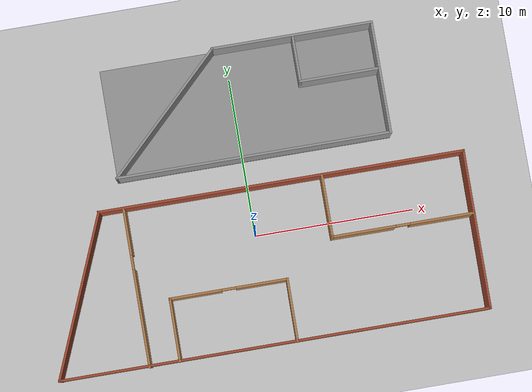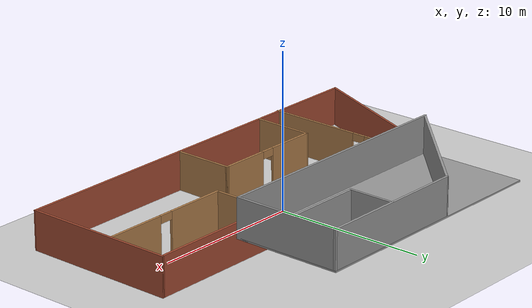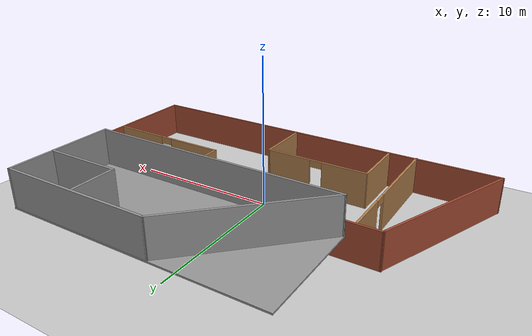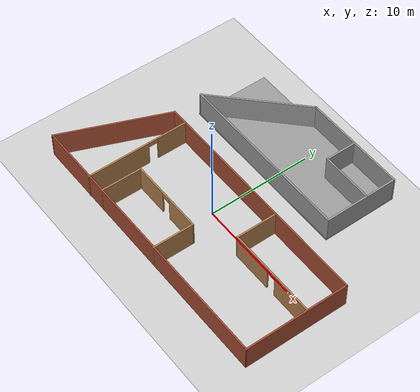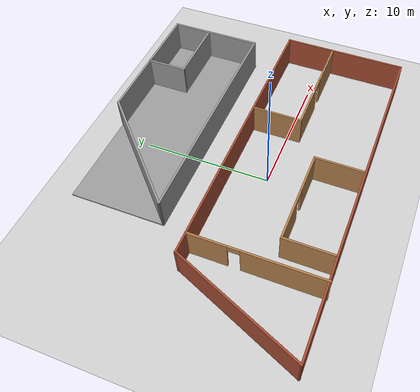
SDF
<sdf version="1.7">
 <world name="default">
  <light name="sun" type="directional">
   <pose>0 0 10 0 -0 0</pose>
   <diffuse>0.8 0.8 0.8 1</diffuse>
   <specular>0.2 0.2 0.2 1</specular>
   <attenuation>
    <range>1000</range>
    <constant>0.9</constant>
    <linear>0.01</linear>
    <quadratic>0.001</quadratic>
   </attenuation>
   <direction>-0.5 0.1 -0.9</direction>
   <spot><inner_angle>0</inner_angle><outer_angle>0</outer_angle><falloff>0</falloff></spot>
  </light>
  <model name="ground_plane">
   <static>1</static>
   <link name="link">
    <collision name="collision">
     <geometry><plane><normal>0 0 1</normal><size>100 100</size></plane></geometry>
     <surface>
      <contact><collide_bitmask>65535</collide_bitmask></contact>
      <friction><ode><mu>100</mu><mu2>50</mu2></ode></friction>
     </surface>
    </collision>
    <visual name="visual">
     <cast_shadows>0</cast_shadows>
     <geometry><plane><normal>0 0 1</normal><size>100 100</size></plane></geometry>
     <material>
      <script><uri>file://media/materials/scripts/gazebo.material</uri><name>Gazebo/Grey</name></script>
     </material>
    </visual>
   </link>
  </model>
  <gravity>0 0 -9.8</gravity>
  <magnetic_field>6e-06 2.3e-05 -4.2e-05</magnetic_field>
  <atmosphere type="adiabatic"/>
  <physics type="ode">
   <max_step_size>0.001</max_step_size>
   <real_time_factor>1</real_time_factor>
   <real_time_update_rate>1000</real_time_update_rate>
  </physics>
  <scene><ambient>0.4 0.4 0.4 1</ambient><background>0.7 0.7 0.7 1</background><shadows>1</shadows></scene>
  <spherical_coordinates>
   <surface_model>EARTH_WGS84</surface_model>
   <latitude_deg>0</latitude_deg>
   <longitude_deg>0</longitude_deg>
   <elevation>0</elevation>
   <heading_deg>0</heading_deg>
  </spherical_coordinates>
  <model name="world_1">
   <pose>0.091985 -2.00856 0 0 -0 0</pose>
   <link name="Floor_0">
    <collision name="Floor_0_Collision">
     <geometry><box><size>17.0311 7.06212 0.1</size></box></geometry>
     <pose>0 0 0.05 0 -0 0</pose>
    </collision>
    <visual name="Floor_0_Visual">
     <pose>0 0 0.05 0 -0 0</pose>
     <geometry><box><size>17.0311 7.06212 0.1</size></box></geometry>
     <material>
      <script><uri>file://media/materials/scripts/gazebo.material</uri><name>Gazebo/Grey</name></script>
      <ambient>1 1 1 1</ambient>
     </material>
     <meta><layer>1</layer></meta>
    </visual>
    <pose>0.597686 10.0048 2.5 0 -0 0</pose>
   </link>
   <link name="Wall_109">
    <collision name="Wall_109_Collision">
     <geometry><box><size>4 0.15 2.5</size></box></geometry>
     <pose>0 0 1.25 0 -0 0</pose>
    </collision>
    <visual name="Wall_109_Visual">
     <pose>0 0 1.25 0 -0 0</pose>
     <geometry><box><size>4 0.15 2.5</size></box></geometry>
     <material>
      <script><uri>file://media/materials/scripts/gazebo.material</uri><name>Gazebo/Wood</name></script>
      <ambient>1 1 1 1</ambient>
     </material>
     <meta><layer>0</layer></meta>
    </visual>
    <pose>4.57966 2.95513 0 0 -0 -1.5708</pose>
   </link>
   <link name="Wall_110">
    <pose>9.00466 1.03013 0 0 -0 0</pose>
    <visual name="Wall_110_Visual_0">
     <pose>-2.46935 0 1.25 0 -0 0</pose>
     <geometry><box><size>4.02107 0.15 2.5</size></box></geometry>
     <material>
      <script><uri>file://media/materials/scripts/gazebo.material</uri><name>Gazebo/Wood</name></script>
      <ambient>1 1 1 1</ambient>
     </material>
     <meta><layer>0</layer></meta>
    </visual>
    <collision name="Wall_110_Collision_0">
     <geometry><box><size>4.02107 0.15 2.5</size></box></geometry>
     <pose>-2.46935 0 1.25 0 -0 0</pose>
    </collision>
    <visual name="Wall_110_Visual_1">
     <pose>2.46053 0 1.25 0 -0 0</pose>
     <geometry><box><size>4.03871 0.15 2.5</size></box></geometry>
     <material>
      <script><uri>file://media/materials/scripts/gazebo.material</uri><name>Gazebo/Wood</name></script>
      <ambient>1 1 1 1</ambient>
     </material>
     <meta><layer>0</layer></meta>
    </visual>
    <collision name="Wall_110_Collision_1">
     <geometry><box><size>4.03871 0.15 2.5</size></box></geometry>
     <pose>2.46053 0 1.25 0 -0 0</pose>
    </collision>
    <visual name="Wall_110_Visual_2">
     <pose>-0.008819 0 2.25 0 -0 0</pose>
     <geometry><box><size>0.9 0.15 0.5</size></box></geometry>
     <material>
      <script><uri>file://media/materials/scripts/gazebo.material</uri><name>Gazebo/Wood</name></script>
      <ambient>1 1 1 1</ambient>
     </material>
     <meta><layer>0</layer></meta>
    </visual>
    <collision name="Wall_110_Collision_2">
     <geometry><box><size>0.9 0.15 0.5</size></box></geometry>
     <pose>-0.008819 0 2.25 0 -0 0</pose>
    </collision>
   </link>
   <link name="Wall_112">
    <collision name="Wall_112_Collision">
     <geometry><box><size>4 0.15 2.5</size></box></geometry>
     <pose>0 0 1.25 0 -0 0</pose>
    </collision>
    <visual name="Wall_112_Visual">
     <pose>0 0 1.25 0 -0 0</pose>
     <geometry><box><size>4 0.15 2.5</size></box></geometry>
     <material>
      <script><uri>file://media/materials/scripts/gazebo.material</uri><name>Gazebo/Wood</name></script>
      <ambient>1 1 1 1</ambient>
     </material>
     <meta><layer>0</layer></meta>
    </visual>
    <pose>-5.94333 -2.99081 0 0 -0 1.56557</pose>
   </link>
   <link name="Wall_113">
    <pose>-2.25827 -1.06581 0 0 -0 0</pose>
    <visual name="Wall_113_Visual_0">
     <pose>-2.09469 0 1.25 0 -0 0</pose>
     <geometry><box><size>3.2704 0.15 2.5</size></box></geometry>
     <material>
      <script><uri>file://media/materials/scripts/gazebo.material</uri><name>Gazebo/Wood</name></script>
      <ambient>1 1 1 1</ambient>
     </material>
     <meta><layer>0</layer></meta>
    </visual>
    <collision name="Wall_113_Collision_0">
     <geometry><box><size>3.2704 0.15 2.5</size></box></geometry>
     <pose>-2.09469 0 1.25 0 -0 0</pose>
    </collision>
    <visual name="Wall_113_Visual_1">
     <pose>2.0852 0 1.25 0 -0 0</pose>
     <geometry><box><size>3.28938 0.15 2.5</size></box></geometry>
     <material>
      <script><uri>file://media/materials/scripts/gazebo.material</uri><name>Gazebo/Wood</name></script>
      <ambient>1 1 1 1</ambient>
     </material>
     <meta><layer>0</layer></meta>
    </visual>
    <collision name="Wall_113_Collision_1">
     <geometry><box><size>3.28938 0.15 2.5</size></box></geometry>
     <pose>2.0852 0 1.25 0 -0 0</pose>
    </collision>
    <visual name="Wall_113_Visual_2">
     <pose>-0.009489 0 2.25 0 -0 0</pose>
     <geometry><box><size>0.9 0.15 0.5</size></box></geometry>
     <material>
      <script><uri>file://media/materials/scripts/gazebo.material</uri><name>Gazebo/Wood</name></script>
      <ambient>1 1 1 1</ambient>
     </material>
     <meta><layer>0</layer></meta>
    </visual>
    <collision name="Wall_113_Collision_2">
     <geometry><box><size>0.9 0.15 0.5</size></box></geometry>
     <pose>-0.009489 0 2.25 0 -0 0</pose>
    </collision>
   </link>
   <link name="Wall_114">
    <collision name="Wall_114_Collision">
     <geometry><box><size>4 0.15 2.5</size></box></geometry>
     <pose>0 0 1.25 0 -0 0</pose>
    </collision>
    <visual name="Wall_114_Visual">
     <pose>0 0 1.25 0 -0 0</pose>
     <geometry><box><size>4 0.15 2.5</size></box></geometry>
     <material>
      <script><uri>file://media/materials/scripts/gazebo.material</uri><name>Gazebo/Wood</name></script>
      <ambient>1 1 1 1</ambient>
     </material>
     <meta><layer>0</layer></meta>
    </visual>
    <pose>1.38656 -2.99081 0 0 -0 -1.57602</pose>
   </link>
   <link name="Wall_54">
    <collision name="Wall_54_Collision">
     <geometry><box><size>7 0.15 2.5</size></box></geometry>
     <pose>0 0 1.25 0 -0 0</pose>
    </collision>
    <visual name="Wall_54_Visual">
     <pose>0 0 1.25 0 -0 0</pose>
     <geometry><box><size>7 0.15 2.5</size></box></geometry>
     <material>
      <script><uri>file://media/materials/scripts/gazebo.material</uri><name>Gazebo/Grey</name></script>
      <ambient>1 1 1 1</ambient>
     </material>
     <meta><layer>1</layer></meta>
    </visual>
    <pose>9.03822 10.0048 2.5 0 -0 1.5708</pose>
   </link>
   <link name="Wall_55">
    <collision name="Wall_55_Collision">
     <geometry><box><size>10 0.15 2.5</size></box></geometry>
     <pose>0 0 1.25 0 -0 0</pose>
    </collision>
    <visual name="Wall_55_Visual">
     <pose>0 0 1.25 0 -0 0</pose>
     <geometry><box><size>10 0.15 2.5</size></box></geometry>
     <material>
      <script><uri>file://media/materials/scripts/gazebo.material</uri><name>Gazebo/Grey</name></script>
      <ambient>1 1 1 1</ambient>
     </material>
     <meta><layer>1</layer></meta>
    </visual>
    <pose>4.11322 13.4298 2.5 0 -0 3.14159</pose>
   </link>
   <link name="Wall_56">
    <collision name="Wall_56_Collision">
     <geometry><box><size>17 0.15 2.5</size></box></geometry>
     <pose>0 0 1.25 0 -0 0</pose>
    </collision>
    <visual name="Wall_56_Visual">
     <pose>0 0 1.25 0 -0 0</pose>
     <geometry><box><size>17 0.15 2.5</size></box></geometry>
     <material>
      <script><uri>file://media/materials/scripts/gazebo.material</uri><name>Gazebo/Grey</name></script>
      <ambient>1 1 1 1</ambient>
     </material>
     <meta><layer>1</layer></meta>
    </visual>
    <pose>0.613216 6.57977 2.5 0 -0 3.14159</pose>
   </link>
   <link name="Wall_57">
    <collision name="Wall_57_Collision">
     <geometry><box><size>9.944 0.15 2.5</size></box></geometry>
     <pose>0 0 1.25 0 -0 0</pose>
    </collision>
    <visual name="Wall_57_Visual">
     <pose>0 0 1.25 0 -0 0</pose>
     <geometry><box><size>9.944 0.15 2.5</size></box></geometry>
     <material>
      <script><uri>file://media/materials/scripts/gazebo.material</uri><name>Gazebo/Grey</name></script>
      <ambient>1 1 1 1</ambient>
     </material>
     <meta><layer>1</layer></meta>
    </visual>
    <pose>-4.31178 10.0048 2.5 0 -0 -2.36702</pose>
   </link>
   <link name="Wall_58">
    <collision name="Wall_58_Collision">
     <geometry><box><size>3 0.15 2.5</size></box></geometry>
     <pose>0 0 1.25 0 -0 0</pose>
    </collision>
    <visual name="Wall_58_Visual">
     <pose>0 0 1.25 0 -0 0</pose>
     <geometry><box><size>3 0.15 2.5</size></box></geometry>
     <material>
      <script><uri>file://media/materials/scripts/gazebo.material</uri><name>Gazebo/Grey</name></script>
      <ambient>1 1 1 1</ambient>
     </material>
     <meta><layer>1</layer></meta>
    </visual>
    <pose>4.15037 11.9803 2.5 0 -0 -1.5708</pose>
   </link>
   <link name="Wall_59">
    <collision name="Wall_59_Collision">
     <geometry><box><size>5 0.15 2.5</size></box></geometry>
     <pose>0 0 1.25 0 -0 0</pose>
    </collision>
    <visual name="Wall_59_Visual">
     <pose>0 0 1.25 0 -0 0</pose>
     <geometry><box><size>5 0.15 2.5</size></box></geometry>
     <material>
      <script><uri>file://media/materials/scripts/gazebo.material</uri><name>Gazebo/Grey</name></script>
      <ambient>1 1 1 1</ambient>
     </material>
     <meta><layer>1</layer></meta>
    </visual>
    <pose>6.57537 10.5553 2.5 0 -0 0</pose>
   </link>
   <link name="Wall_94">
    <collision name="Wall_94_Collision">
     <geometry><box><size>27 0.15 2.5</size></box></geometry>
     <pose>0 0 1.25 0 -0 0</pose>
    </collision>
    <visual name="Wall_94_Visual">
     <pose>0 0 1.25 0 -0 0</pose>
     <geometry><box><size>27 0.15 2.5</size></box></geometry>
     <material>
      <script><uri>file://media/materials/scripts/gazebo.material</uri><name>Gazebo/Bricks</name></script>
      <ambient>1 1 1 1</ambient>
     </material>
     <meta><layer>0</layer></meta>
    </visual>
    <pose>-0.015354 -4.90626 0 0 -0 0</pose>
   </link>
   <link name="Wall_95">
    <collision name="Wall_95_Collision">
     <geometry><box><size>10 0.15 2.5</size></box></geometry>
     <pose>0 0 1.25 0 -0 0</pose>
    </collision>
    <visual name="Wall_95_Visual">
     <pose>0 0 1.25 0 -0 0</pose>
     <geometry><box><size>10 0.15 2.5</size></box></geometry>
     <material>
      <script><uri>file://media/materials/scripts/gazebo.material</uri><name>Gazebo/Bricks</name></script>
      <ambient>1 1 1 1</ambient>
     </material>
     <meta><layer>0</layer></meta>
    </visual>
    <pose>13.4362 0.018744 0 0 -0 1.5654</pose>
   </link>
   <link name="Wall_96">
    <collision name="Wall_96_Collision">
     <geometry><box><size>23 0.15 2.5</size></box></geometry>
     <pose>0 0 1.25 0 -0 0</pose>
    </collision>
    <visual name="Wall_96_Visual">
     <pose>0 0 1.25 0 -0 0</pose>
     <geometry><box><size>23 0.15 2.5</size></box></geometry>
     <material>
      <script><uri>file://media/materials/scripts/gazebo.material</uri><name>Gazebo/Bricks</name></script>
      <ambient>1 1 1 1</ambient>
     </material>
     <meta><layer>0</layer></meta>
    </visual>
    <pose>2.01125 4.94374 0 0 -0 3.14159</pose>
   </link>
   <link name="Wall_97">
    <collision name="Wall_97_Collision">
     <geometry><box><size>10.8013 0.15 2.5</size></box></geometry>
     <pose>0 0 1.25 0 -0 0</pose>
    </collision>
    <visual name="Wall_97_Visual">
     <pose>0 0 1.25 0 -0 0</pose>
     <geometry><box><size>10.8013 0.15 2.5</size></box></geometry>
     <material>
      <script><uri>file://media/materials/scripts/gazebo.material</uri><name>Gazebo/Bricks</name></script>
      <ambient>1 1 1 1</ambient>
     </material>
     <meta><layer>0</layer></meta>
    </visual>
    <pose>-11.4138 0.018744 0 0 -0 -1.96117</pose>
   </link>
   <link name="Wall_99">
    <pose>-7.84321 -0.04164 0 0 -0 -1.5708</pose>
    <visual name="Wall_99_Visual_0">
     <pose>-3.51704 0 1.25 0 -0 0</pose>
     <geometry><box><size>2.96592 0.15 2.5</size></box></geometry>
     <material>
      <script><uri>file://media/materials/scripts/gazebo.material</uri><name>Gazebo/Wood</name></script>
      <ambient>1 1 1 1</ambient>
     </material>
     <meta><layer>0</layer></meta>
    </visual>
    <collision name="Wall_99_Collision_0">
     <geometry><box><size>2.96592 0.15 2.5</size></box></geometry>
     <pose>-3.51704 0 1.25 0 -0 0</pose>
    </collision>
    <visual name="Wall_99_Visual_1">
     <pose>1.93296 0 1.25 0 -0 0</pose>
     <geometry><box><size>6.13408 0.15 2.5</size></box></geometry>
     <material>
      <script><uri>file://media/materials/scripts/gazebo.material</uri><name>Gazebo/Wood</name></script>
      <ambient>1 1 1 1</ambient>
     </material>
     <meta><layer>0</layer></meta>
    </visual>
    <collision name="Wall_99_Collision_1">
     <geometry><box><size>6.13408 0.15 2.5</size></box></geometry>
     <pose>1.93296 0 1.25 0 -0 0</pose>
    </collision>
    <visual name="Wall_99_Visual_2">
     <pose>-1.58408 0 2.25 0 -0 0</pose>
     <geometry><box><size>0.9 0.15 0.5</size></box></geometry>
     <material>
      <script><uri>file://media/materials/scripts/gazebo.material</uri><name>Gazebo/Wood</name></script>
      <ambient>1 1 1 1</ambient>
     </material>
     <meta><layer>0</layer></meta>
    </visual>
    <collision name="Wall_99_Collision_2">
     <geometry><box><size>0.9 0.15 0.5</size></box></geometry>
     <pose>-1.58408 0 2.25 0 -0 0</pose>
    </collision>
   </link>
   <static>1</static>
  </model>
 </world>
</sdf>
